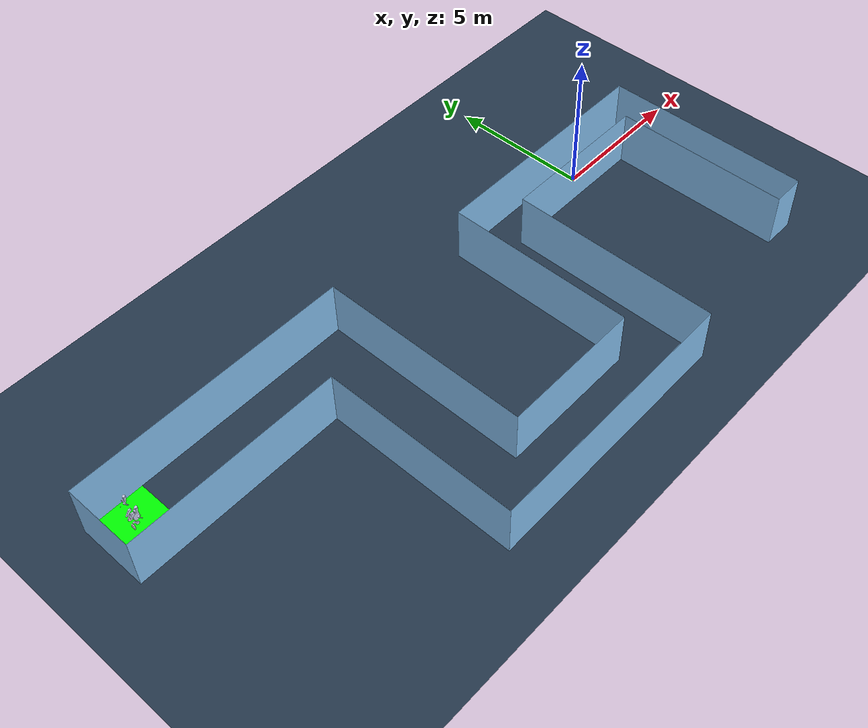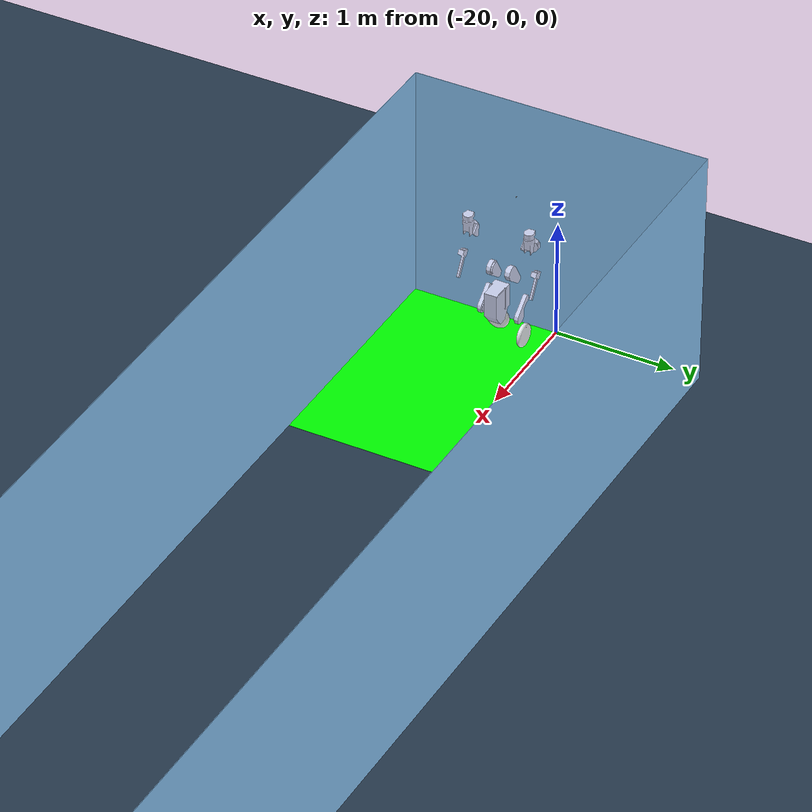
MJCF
<mujoco model="SATYRR_NEW_V4">
    <compiler eulerseq = "zyx" angle="radian" meshdir="satyrr_wholebody/"/>
    <size njmax="-1" nconmax="-1" />
    <option integrator="RK4" timestep="0.001"/>

	<default>
		<geom contype = '0' conaffinity = '0'/>
		<default class = 'collision-default'>
			<geom contype = '6' conaffinity = '0'/>
		</default>
        <default class = 'collision-group-a'>
            <geom contype = '2' conaffinity = '4'/>
        </default>
        <default class = 'collision-group-b'>
            <geom contype = '4' conaffinity = '2'/>
        </default>
    </default>

    <asset>
        <mesh name="Torso" file="Torso.STL" />
        <mesh name="Thigh_R" file="Thigh_R.STL" />
        <mesh name="Shin_R" file="Shin_R.STL" />
        <mesh name="Wheel_R" file="Wheel_R.STL" />
        <mesh name="Thigh_L" file="Thigh_L.STL" />
        <mesh name="Shin_L" file="Shin_L.STL" />
        <mesh name="Wheel_L" file="Wheel_L.STL" />
        <mesh name="Shoulder_U_L" file="Shoulder_U_L.STL" />
        <mesh name="Shoulder_L" file="Shoulder_L.STL" />
        <mesh name="Arm_L" file="Arm_L.STL" />
        <mesh name="Shank_L" file="Shank_L.STL" />
        <mesh name="Shoulder_U_R" file="Shoulder_U_R.STL" />
        <mesh name="Shoulder_R" file="Shoulder_R.STL" />
        <mesh name="Arm_R" file="Arm_R.STL" />
        <mesh name="Shank_R" file="Shank_R.STL" />
        <texture builtin="checker" height="512" name="texplane" rgb1=".2 .3 .4" rgb2=".1 0.15 0.2" type="2d" width="512"/>
        <material name="floorplane" reflectance="0.5" texrepeat="1 1" texture="texplane" texuniform="true"/>
        <material name="matplane" reflectance="0.3" texture="texplane" texrepeat="1 1" texuniform="true"/>
        <material name="wall" rgba="0.5372 0.7686 0.9568 1"/>
    </asset>

    <worldbody>
        <geom class = "collision-default" name="floor0" pos="0. 0. 0" size="0 0 1" type="plane" condim="3" material="floorplane"></geom>
		<light directional="true" ambient="0.2 0.2 0.2" diffuse="0.8 0.8 0.8" specular="0.3 0.3 0.3" castshadow="false" pos="0 0 4" dir="0 0 -1" name="light0"></light>

		<!-- camera: front view -->
        <camera name="camera1" mode="targetbody" target="torso"/>

        <geom name="corridor_1_right" class = "collision-default" pos="-10.2464 -2.4384 1" size="0.001 3.6576 1" type="box" material="wall"  />
        <geom name="corridor_1_top" class = "collision-default" pos="-15.1232 1.2192 1" size="4.8768 0.001 1" type="box" material="wall" />
        <geom name="corridor_1_left" class = "collision-default" pos="-20 0 1" size="0.001 1.2192 1" type="box" material="wall" />
        <geom name="corridor_1_down" class = "collision-default" pos="-16.3424 -1.2192 1" size="3.6576 0.001 1" type="box" material="wall" />
        <geom name="corridor_2_left" class = "collision-default" pos="-12.6848 -4.572 1" size="0.001 3.3528 1" type="box" material="wall" />
        <geom name="corridor_3_down" class = "collision-default" pos="-8.1128 -7.9248 1" size="4.572 0.001 1" type="box" material="wall" />
        <geom name="corridor_3_top" class = "collision-default" pos="-7.808 -6.096 1" size="2.4384 0.001 1" type="box" material="wall" />
        <geom name="corridor_4_left" class = "collision-default" pos="-5.3696 -2.7813 1" size="0.001 3.3147 1" type="box" material="wall" />
        <geom name="corridor_4_right" class = "collision-default" pos="-3.5408 -4.2672 1" size="0.001 3.6576 1" type="box" material="wall" />
        <geom name="corridor_5_down" class = "collision-default" pos="-0.7976 -0.6096 1" size="2.7432 0.001 1" type="box" material="wall" />
        <geom name="corridor_5_top" class = "collision-default" pos="-1.1405 0.5334 1" size="4.2291 0.001 1" type="box" material="wall" />
        <geom name="corridor_6_left" class = "collision-default" pos="1.9456 -3.6957 1" size="0.001 3.0861 1" type="box" material="wall" />
        <geom name="corridor_6_right" class = "collision-default" pos="3.0886 -3.1242 1" size="0.001 3.6576 1" type="box" material="wall" />
        <geom name="corridor_6_down" class = "collision-default" pos="2.5171 -6.7818 1" size="0.5715 0.001 1" type="box" material="wall" />

        <body name="start_location_body" pos="-19 0 0">
            <geom name="start_location_geom" size="1 1.2192 0.001" type="box" rgba="0 1 0 1" />
        </body>
        <body name="end_location_body" pos="2.5171 -6.2103 0">
            <geom name="end_location_geom" size="0.5715 0.5715 0.001" type="box" rgba="1 1 1 1" />
        </body>

        <body name="torso" pos="-19 0.0 0.4869">
            <joint axis = "1 0 0" pos = "0 0 0" name = "move_x" type = "slide" limited = "false"/>
			<joint axis = "0 1 0" pos = "0 0 0" name = "move_y" type = "slide" limited = "false"/>
			<joint axis = "0 0 1" pos = "0 0 0" name = "move_z" type = "slide" limited = "false"/>
			<joint axis = "1 0 0" pos = "0 0 0" name = "rotate_roll" type = "hinge" limited = "false"/>
			<joint axis = "0 1 0" pos = "0 0 0" name = "rotate_pitch" type = "hinge" limited = "false"/>
			<joint axis = "0 0 1" pos = "0 0 0" name = "rotate_yaw" type = "hinge" limited = "false"/>
            <geom class = 'collision-group-a' friction="0.9" type="mesh" rgba="0.79216 0.81961 0.93333 1" mesh="Torso" mass="4.05" />

            <site name="camera_vr" pos="-0.30 0 1.2"/>

            <body name="Thigh_R" pos="-0.06625 0 0.36">
                <inertial pos="0 -0.080175 -0.0380315" quat="0.707107 0 0 0.707107" mass="0.904864" diaginertia="0.00325713 0.00280128 0.000871858" />
                <joint name="Hip_R" pos="0 0 0" axis="0 -1 0" />
                <geom class = 'collision-group-a' type="mesh" rgba="0.792157 0.819608 0.933333 1" mesh="Thigh_R" />
                <body name="Shin_R" pos="0 -0.080175 -0.15">
                    <inertial pos="0 0 -0.0789246" quat="0.707107 0 0 0.707107" mass="0.394882" diaginertia="0.00112813 0.00112607 0.000173116" />
                    <joint name="Knee_R" pos="0 0 0" axis="0 -1 0" />
                    <geom class = 'collision-group-a' type="mesh" rgba="0.792157 0.819608 0.933333 1" mesh="Shin_R" />
                    <body name="Wheel_R" pos="0 0 -0.15" quat="0.707107 0 0 -0.707107">
                        <inertial pos="0.0356257 0 0" mass="0.52599" diaginertia="0.000948894 0.000489944 0.000489944" />
                        <joint name="Ankle_R" pos="0 0 0" axis="1 0 0" />
                        <geom class = 'collision-group-a' type="mesh" rgba="0.898039 0.917647 0.929412 1" mesh="Wheel_R" />
                    </body>
                </body>
            </body>
            <body name="Thigh_L" pos="-0.06625 0 0.36">
                <inertial pos="0 0.080175 -0.0380315" quat="0.707107 0 0 0.707107" mass="0.904864" diaginertia="0.00325713 0.00280128 0.000871858" />
                <joint name="Hip_L" pos="0 0 0" axis="0 -1 0" />
                <geom class = 'collision-group-b' type="mesh" rgba="0.792157 0.819608 0.933333 1" mesh="Thigh_L" />
                <body name="Shin_L" pos="0 0.080175 -0.15">
                    <inertial pos="0 0 -0.0789246" quat="0.707107 0 0 0.707107" mass="0.394882" diaginertia="0.00112813 0.00112607 0.000173116" />
                    <joint name="Knee_L" pos="0 0 0" axis="0 -1 0" />
                    <geom class = 'collision-group-b' type="mesh" rgba="0.792157 0.819608 0.933333 1" mesh="Shin_L" />
                    <body name="Wheel_L" pos="0 0 -0.15">
                        <inertial pos="0 0.0363743 0" quat="0.707107 0 0 0.707107" mass="0.52599" diaginertia="0.000948894 0.000489944 0.000489944" />
                        <joint name="Ankle_L" pos="0 0 0" axis="0 -1 0" />
                        <geom class = 'collision-group-b' type="mesh" rgba="0.898039 0.917647 0.929412 1" mesh="Wheel_L" />
                    </body>
                </body>
            </body>
            <body name="Shoulder_U_L" pos="-0.06625 0.13274 0.48068">
                <inertial pos="5.98242e-08 -3.82379e-09 0.0467603" quat="0.5 0.5 0.5 0.5" mass="0.246892" diaginertia="0.0012863 0.00103844 0.00030284" />
                <geom class = 'collision-group-b' type="mesh" rgba="0.792157 0.819608 0.933333 1" mesh="Shoulder_U_L" />
                <body name="Shoulder_L" pos="0 0 0.114214">
                    <inertial pos="-7.6505e-09 4.57848e-09 2.98572e-10" quat="0.500001 0.499999 0.499999 0.500001" mass="0.225611" diaginertia="0.000280653 0.000166998 0.000150663" />
                    <geom class = 'collision-group-b' type="mesh" rgba="0.792157 0.819608 0.933333 1" mesh="Shoulder_L" />
                    <body name="Arm_L" pos="0 0 0">
                        <inertial pos="0 0.0494924 -0.061196" quat="0.707074 0.00680441 -0.00680441 0.707074" mass="0.584971" diaginertia="0.00283895 0.00259254 0.000369078" />
                        <geom class = 'collision-group-b' type="mesh" rgba="0.792157 0.819608 0.933333 1" mesh="Arm_L" />
                        <body name="Shank_L" pos="0 0.05082 -0.204">
                            <inertial pos="9.76797e-09 0 -0.0687371" quat="0.707107 0 0 0.707107" mass="0.111225" diaginertia="0.000216628 0.00021518 1.39816e-05" />
                            <geom class = 'collision-group-b' type="mesh" rgba="0.792157 0.819608 0.933333 1" mesh="Shank_L" />
                        </body>
                    </body>
                </body>
            </body>
            <body name="Shoulder_U_R" pos="-0.06625 -0.13274 0.48068">
                <inertial pos="5.98242e-08 -3.82379e-09 0.0467603" quat="0.5 0.5 0.5 0.5" mass="0.246892" diaginertia="0.0012863 0.00103844 0.00030284" />
                <geom class = 'collision-group-a' type="mesh" rgba="0.792157 0.819608 0.933333 1" mesh="Shoulder_U_R" />
                <body name="Shoulder_R" pos="0 0 0.114214">
                    <inertial pos="-7.6505e-09 4.57848e-09 2.98572e-10" quat="0.500001 0.499999 0.499999 0.500001" mass="0.225611" diaginertia="0.000280653 0.000166998 0.000150663" />
                    <geom class = 'collision-group-a' type="mesh" rgba="0.792157 0.819608 0.933333 1" mesh="Shoulder_R" />
                    <body name="Arm_R" pos="0 0 0">
                        <inertial pos="0 -0.0494924 -0.061196" quat="0.707074 -0.00680441 0.00680441 0.707074" mass="0.584971" diaginertia="0.00283895 0.00259254 0.000369078" />
                        <geom class = 'collision-group-a' type="mesh" rgba="0.792157 0.819608 0.933333 1" mesh="Arm_R" />
                        <body name="Shank_R" pos="0 -0.05082 -0.204">
                            <inertial pos="-9.76797e-09 0 -0.0687371" quat="0.707107 0 0 0.707107" mass="0.111225" diaginertia="0.000216628 0.00021518 1.39816e-05" />
                            <geom class = 'collision-group-a' type="mesh" rgba="0.792157 0.819608 0.933333 1" mesh="Shank_R" />
                        </body>
                    </body>
                </body>
            </body>
        </body>

    </worldbody>

    <actuator>
        <motor ctrllimited="true" ctrlrange="-100.0 100.0" gear="1" joint="Hip_L"/>
        <motor ctrllimited="true" ctrlrange="-100.0 100.0" gear="1" joint="Knee_L"/>
        <motor ctrllimited="true" ctrlrange="-100.0 100.0" gear="1" joint="Ankle_L"/>
        <motor ctrllimited="true" ctrlrange="-100.0 100.0" gear="1" joint="Hip_R"/>
        <motor ctrllimited="true" ctrlrange="-100.0 100.0" gear="1" joint="Knee_R"/>
        <motor ctrllimited="true" ctrlrange="-100.0 100.0" gear="1" joint="Ankle_R"/>
    </actuator>
</mujoco>
